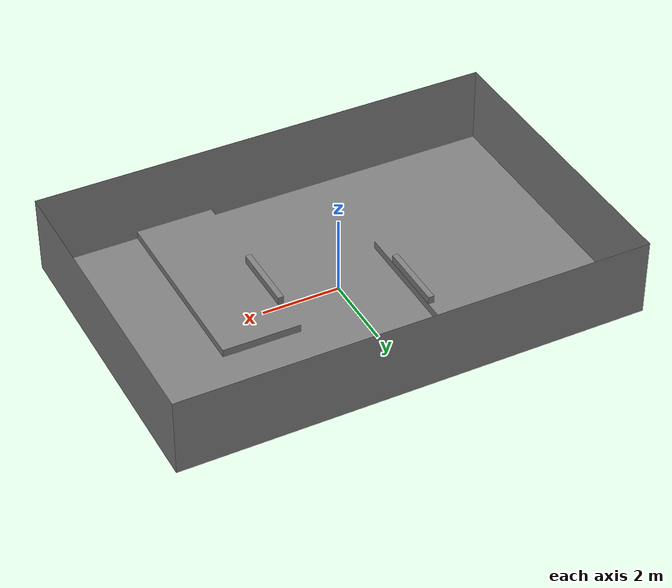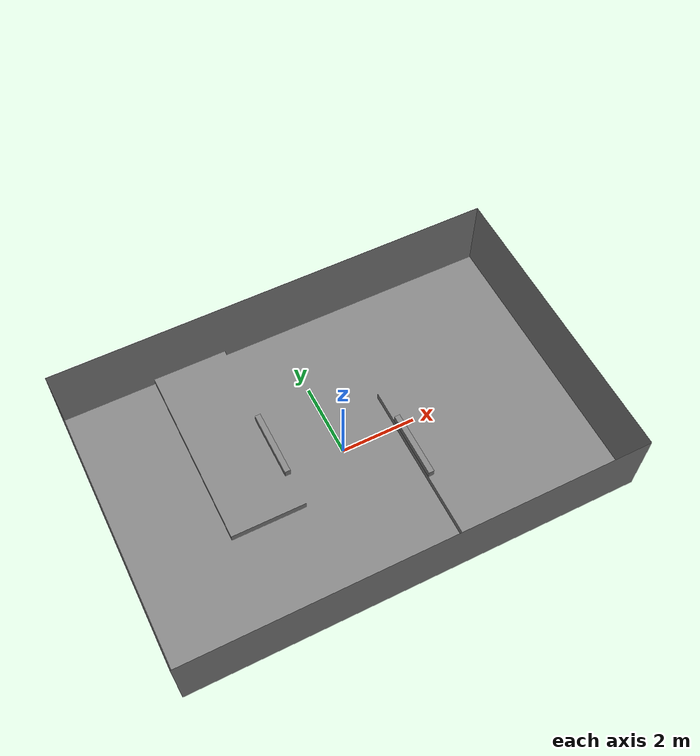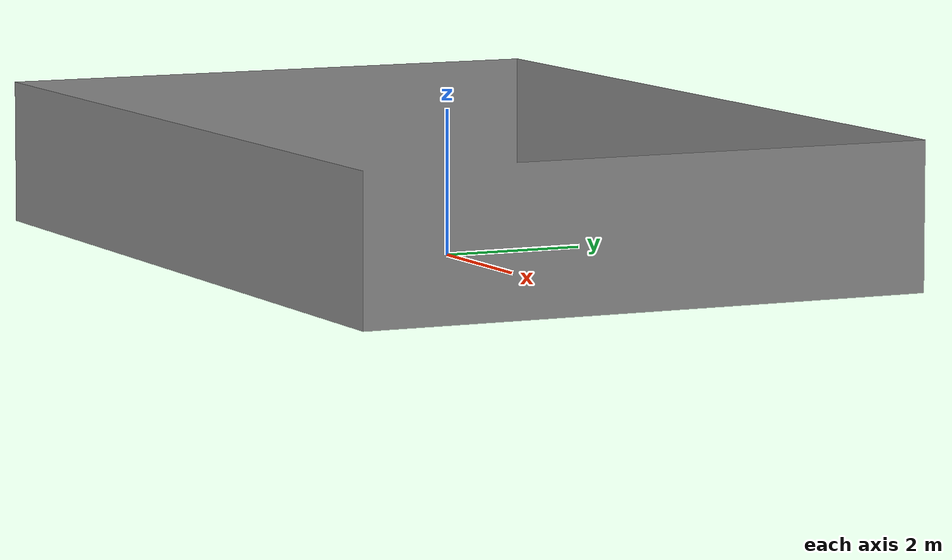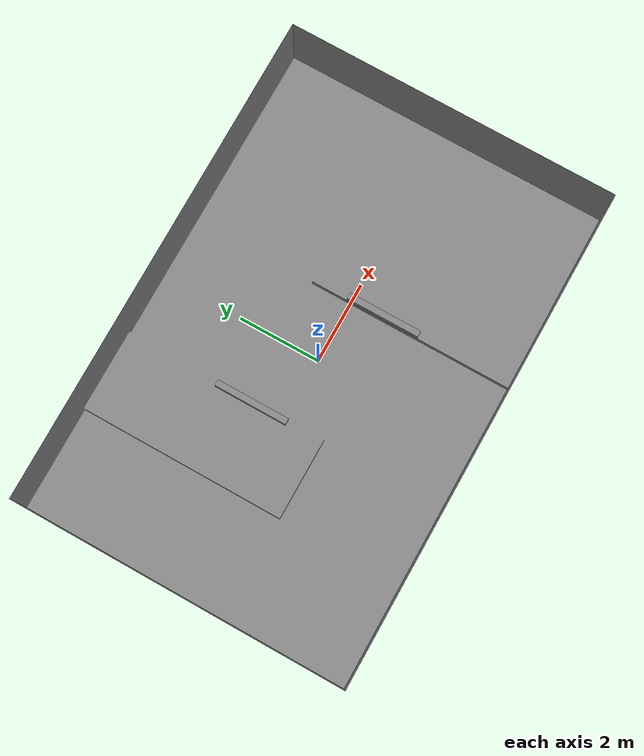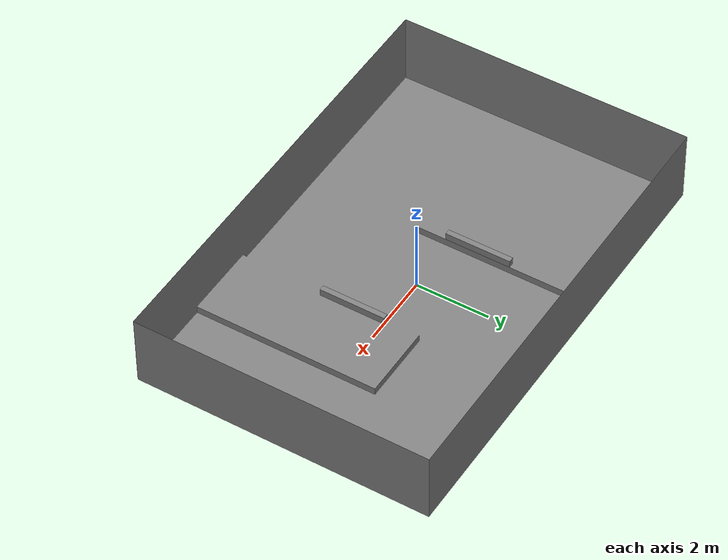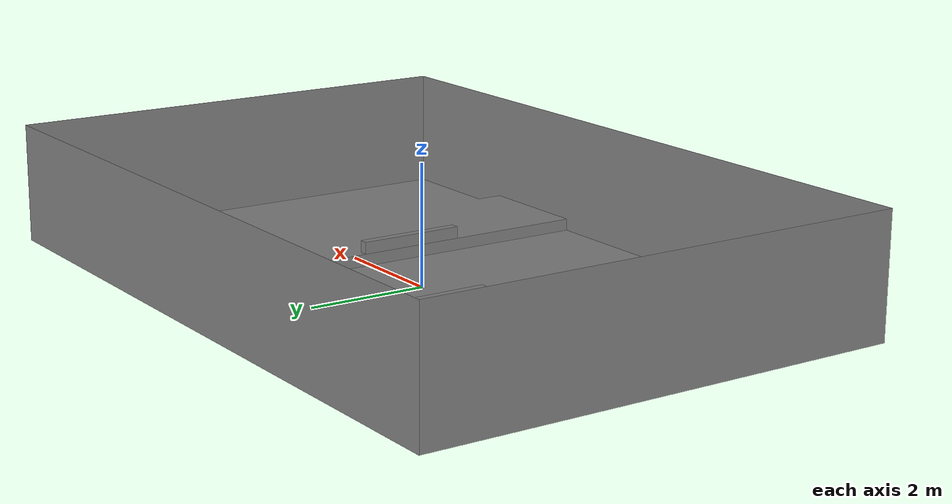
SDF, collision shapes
<?xml version="1.0"?>
<!--
  Adapted from ROS2_RM_Navigation/pb_rm_simulation.
  Copyright (c) 2026 MY_nav Contributors. Licensed under the MIT License.
-->
<sdf version="1.7">
  <model name="RMUL_2026">
    <static>true</static>
    <link name="field">
      <visual name="field_ground_visual">
        <geometry>
          <mesh>
            <uri>model://RMUL2026H_world/meshes/RMUL_2026H_ground_visual.stl</uri>
          </mesh>
        </geometry>
        <material>
          <ambient>0.505 0.505 0.505 1</ambient>
          <diffuse>0.505 0.505 0.505 1</diffuse>
          <specular>0.01 0.01 0.01 1</specular>
        </material>
        <cast_shadows>true</cast_shadows>
      </visual>

      <visual name="field_walls_visual">
        <geometry>
          <mesh>
            <!-- Wall faces point inward, so they are culled from outside. -->
            <uri>model://RMUL2026H_world/meshes/RMUL_2026H_walls_visual.stl</uri>
          </mesh>
        </geometry>
        <material>
          <ambient>0.169 0.169 0.169 1</ambient>
          <diffuse>0.169 0.169 0.169 1</diffuse>
          <specular>0.01 0.01 0.01 1</specular>
        </material>
        <cast_shadows>true</cast_shadows>
      </visual>

      <visual name="highlands_visual">
        <geometry>
          <mesh>
            <uri>model://RMUL2026H_world/meshes/RMUL_2026H_highlands_visual.stl</uri>
          </mesh>
        </geometry>
        <material>
          <ambient>0.348 0.408 0.492 1</ambient>
          <diffuse>0.348 0.408 0.492 1</diffuse>
          <specular>0.01 0.01 0.01 1</specular>
        </material>
        <cast_shadows>true</cast_shadows>
      </visual>

      <!-- The start / supply zones are 1.5 x 2.0 m and point-symmetric. -->
      <visual name="red_start_supply_zone_visual">
        <pose>-5.25 3.0 0.002 0 0 0</pose>
        <geometry>
          <box>
            <size>1.5 2.0 0.004</size>
          </box>
        </geometry>
        <material>
          <ambient>0.201 0.201 0.201 1</ambient>
          <diffuse>0.201 0.201 0.201 1</diffuse>
          <specular>0.01 0.01 0.01 1</specular>
        </material>
        <cast_shadows>false</cast_shadows>
      </visual>

      <visual name="blue_start_supply_zone_visual">
        <pose>5.25 -3.0 0.002 0 0 0</pose>
        <geometry>
          <box>
            <size>1.5 2.0 0.004</size>
          </box>
        </geometry>
        <material>
          <ambient>0.201 0.201 0.201 1</ambient>
          <diffuse>0.201 0.201 0.201 1</diffuse>
          <specular>0.01 0.01 0.01 1</specular>
        </material>
        <cast_shadows>false</cast_shadows>
      </visual>

      <!-- The central control zone is 3.0 x 3.0 m. -->
      <visual name="control_zone_visual">
        <pose>0 0 0.002 0 0 0</pose>
        <geometry>
          <box>
            <size>3.0 3.0 0.004</size>
          </box>
        </geometry>
        <material>
          <ambient>0.309 0.486 0.627 1</ambient>
          <diffuse>0.309 0.486 0.627 1</diffuse>
          <specular>0.01 0.01 0.01 1</specular>
        </material>
        <cast_shadows>false</cast_shadows>
      </visual>
      <collision name="collision">
        <max_contacts>10</max_contacts>
        <geometry>
          <mesh>
            <uri>model://RMUL2026H_world/meshes/RMUL_2026H.stl</uri>
          </mesh>
        </geometry>
        <surface>
          <friction>
            <ode>
              <mu>1</mu>
              <mu2>1</mu2>
            </ode>
          </friction>
          <contact>
            <collide_bitmask>1</collide_bitmask>
            <ode>
              <soft_cfm>0</soft_cfm>
              <soft_erp>0.2</soft_erp>
              <kp>1e13</kp>
              <kd>1</kd>
              <max_vel>0.01</max_vel>
            </ode>
          </contact>
        </surface>
      </collision>

      <visual name="positive_highland_guard_visual">
        <pose>1.575 -0.8 0.3 0 0 0</pose>
        <geometry>
          <box>
            <size>0.15 1.8 0.2</size>
          </box>
        </geometry>
        <material>
          <ambient>0.348 0.408 0.492 1</ambient>
          <diffuse>0.348 0.408 0.492 1</diffuse>
          <specular>0.01 0.01 0.01 1</specular>
        </material>
        <cast_shadows>true</cast_shadows>
      </visual>
      <collision name="positive_highland_guard_collision">
        <pose>1.575 -0.8 0.3 0 0 0</pose>
        <geometry>
          <box>
            <size>0.15 1.8 0.2</size>
          </box>
        </geometry>
      </collision>

      <visual name="negative_highland_guard_visual">
        <pose>-1.575 0.8 0.3 0 0 0</pose>
        <geometry>
          <box>
            <size>0.15 1.8 0.2</size>
          </box>
        </geometry>
        <material>
          <ambient>0.348 0.408 0.492 1</ambient>
          <diffuse>0.348 0.408 0.492 1</diffuse>
          <specular>0.01 0.01 0.01 1</specular>
        </material>
        <cast_shadows>true</cast_shadows>
      </visual>
      <collision name="negative_highland_guard_collision">
        <pose>-1.575 0.8 0.3 0 0 0</pose>
        <geometry>
          <box>
            <size>0.15 1.8 0.2</size>
          </box>
        </geometry>
      </collision>
    </link>
  </model>
</sdf>
